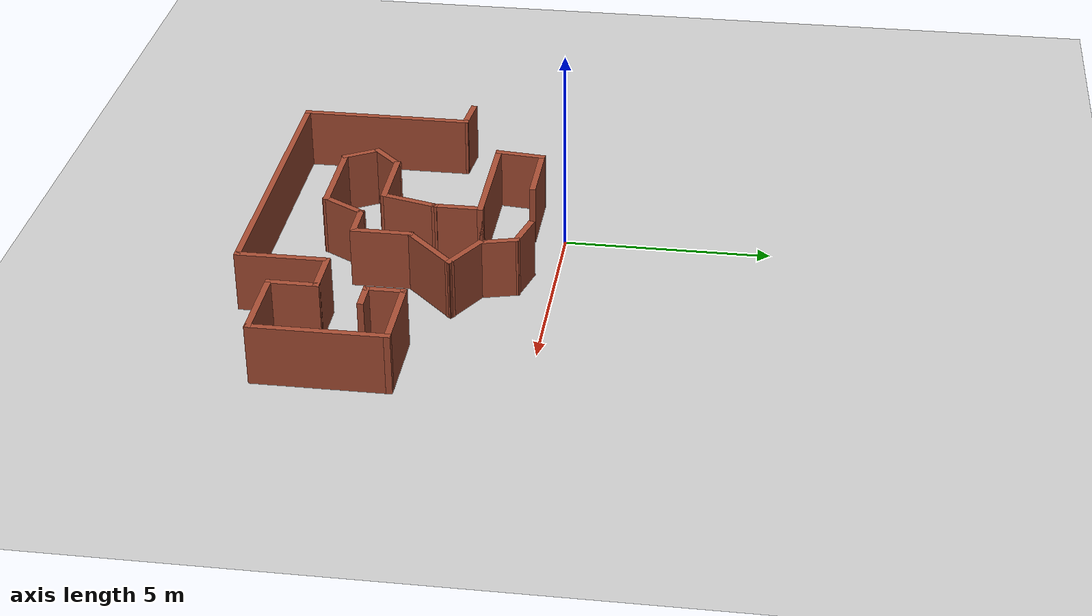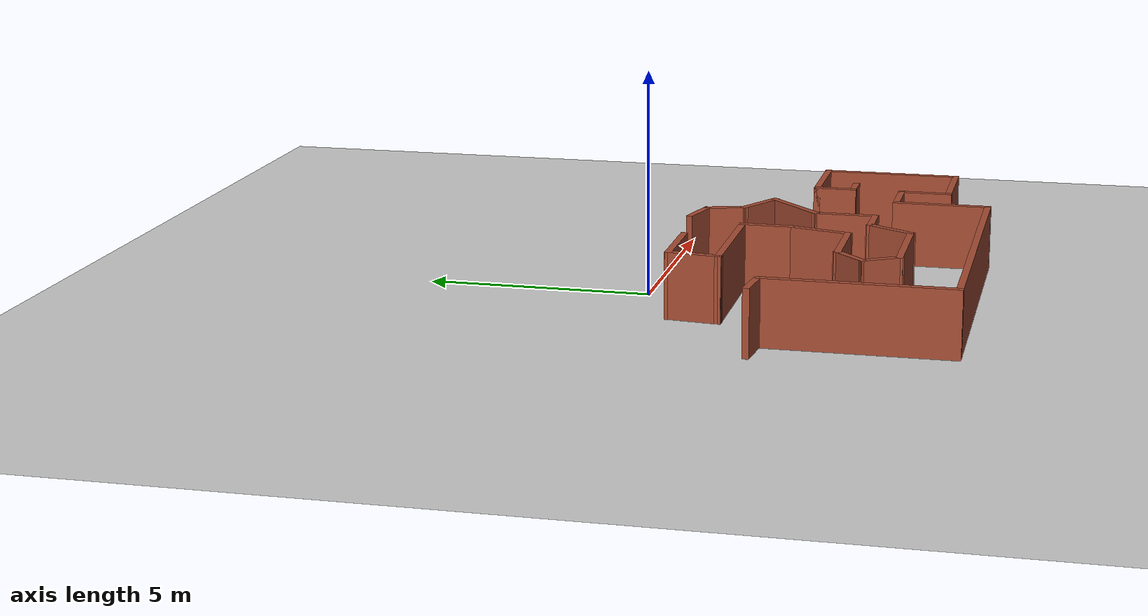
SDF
<sdf version="1.7">
 <world name="expanded_maze_world">
  <model name="ground_plane">
   <static>1</static>
   <link name="link">
    <collision name="collision">
     <geometry><plane><normal>0 0 1</normal><size>100 100</size></plane></geometry>
     <surface>
      <contact><collide_bitmask>65535</collide_bitmask></contact>
      <friction><ode><mu>100</mu><mu2>50</mu2></ode></friction>
     </surface>
    </collision>
    <visual name="visual">
     <cast_shadows>0</cast_shadows>
     <geometry><plane><normal>0 0 1</normal><size>100 100</size></plane></geometry>
     <material>
      <script><uri>file://media/materials/scripts/gazebo.material</uri><name>Gazebo/Grey</name></script>
     </material>
    </visual>
   </link>
  </model>
  <model name="ground_plane">
   <static>1</static>
   <link name="link">
    <collision name="collision">
     <geometry><plane><normal>0 0 1</normal><size>100 100</size></plane></geometry>
     <surface>
      <contact><collide_bitmask>65535</collide_bitmask></contact>
      <friction><ode><mu>100</mu><mu2>50</mu2></ode></friction>
     </surface>
    </collision>
    <visual name="visual">
     <cast_shadows>0</cast_shadows>
     <geometry><plane><normal>0 0 1</normal><size>100 100</size></plane></geometry>
     <material>
      <script><uri>file://media/materials/scripts/gazebo.material</uri><name>Gazebo/Grey</name></script>
     </material>
    </visual>
   </link>
  </model>
  <model name="Search">
   <link name="Wall_0">
    <pose>-4.64822 -5.4632 0 0 0 -1.5708</pose>
    <visual name="Wall_0_Visual">
     <pose>0 0 1.25 0 -0 0</pose>
     <geometry><box><size>4.25 0.15 2.5</size></box></geometry>
     <material>
      <script><uri>file://media/materials/scripts/gazebo.material</uri><name>Gazebo/Bricks</name></script>
      <ambient>1 1 1 1</ambient>
      <shader type="pixel"/>
     </material>
     <meta><layer>0</layer></meta>
    </visual>
    <collision name="Wall_0_Collision">
     <pose>0 0 1.25 0 -0 0</pose>
     <geometry><box><size>4.25 0.15 2.5</size></box></geometry>
     <surface>
      <friction>
       <ode><mu>1</mu><mu2>1</mu2><fdir1>0 0 0</fdir1><slip1>0</slip1><slip2>0</slip2></ode>
       <torsional>
        <coefficient>1</coefficient>
        <patch_radius>0</patch_radius>
        <surface_radius>0</surface_radius>
        <use_patch_radius>1</use_patch_radius>
        <ode><slip>0</slip></ode>
       </torsional>
      </friction>
      <bounce><restitution_coefficient>0</restitution_coefficient><threshold>1e+06</threshold></bounce>
      <contact>
       <collide_without_contact>0</collide_without_contact>
       <collide_without_contact_bitmask>1</collide_without_contact_bitmask>
       <collide_bitmask>1</collide_bitmask>
       <ode>
        <soft_cfm>0</soft_cfm>
        <soft_erp>0.2</soft_erp>
        <kp>1e+13</kp>
        <kd>1</kd>
        <max_vel>0.01</max_vel>
        <min_depth>0</min_depth>
       </ode>
       <bullet>
        <split_impulse>1</split_impulse>
        <split_impulse_penetration_threshold>-0.01</split_impulse_penetration_threshold>
        <soft_cfm>0</soft_cfm>
        <soft_erp>0.2</soft_erp>
        <kp>1e+13</kp>
        <kd>1</kd>
       </bullet>
      </contact>
     </surface>
    </collision>
   </link>
   <link name="Wall_11">
    <pose>2.4822 -6.4632 0 0 -0 1.5708</pose>
    <visual name="Wall_11_Visual">
     <pose>0 0 1.25 0 -0 0</pose>
     <geometry><box><size>2.25 0.15 2.5</size></box></geometry>
     <material>
      <script><uri>file://media/materials/scripts/gazebo.material</uri><name>Gazebo/Bricks</name></script>
      <ambient>1 1 1 1</ambient>
      <shader type="pixel"/>
     </material>
     <meta><layer>0</layer></meta>
    </visual>
    <collision name="Wall_11_Collision">
     <pose>0 0 1.25 0 -0 0</pose>
     <geometry><box><size>2.25 0.15 2.5</size></box></geometry>
     <surface>
      <friction>
       <ode><mu>1</mu><mu2>1</mu2><fdir1>0 0 0</fdir1><slip1>0</slip1><slip2>0</slip2></ode>
       <torsional>
        <coefficient>1</coefficient>
        <patch_radius>0</patch_radius>
        <surface_radius>0</surface_radius>
        <use_patch_radius>1</use_patch_radius>
        <ode><slip>0</slip></ode>
       </torsional>
      </friction>
      <bounce><restitution_coefficient>0</restitution_coefficient><threshold>1e+06</threshold></bounce>
      <contact>
       <collide_without_contact>0</collide_without_contact>
       <collide_without_contact_bitmask>1</collide_without_contact_bitmask>
       <collide_bitmask>1</collide_bitmask>
       <ode>
        <soft_cfm>0</soft_cfm>
        <soft_erp>0.2</soft_erp>
        <kp>1e+13</kp>
        <kd>1</kd>
        <max_vel>0.01</max_vel>
        <min_depth>0</min_depth>
       </ode>
       <bullet>
        <split_impulse>1</split_impulse>
        <split_impulse_penetration_threshold>-0.01</split_impulse_penetration_threshold>
        <soft_cfm>0</soft_cfm>
        <soft_erp>0.2</soft_erp>
        <kp>1e+13</kp>
        <kd>1</kd>
       </bullet>
      </contact>
     </surface>
    </collision>
   </link>
   <link name="Wall_12">
    <pose>3.0322 -5.4132 0 0 -0 0</pose>
    <visual name="Wall_12_Visual">
     <pose>0 0 1.25 0 -0 0</pose>
     <geometry><box><size>1.25 0.15 2.5</size></box></geometry>
     <material>
      <script><uri>file://media/materials/scripts/gazebo.material</uri><name>Gazebo/Bricks</name></script>
      <ambient>1 1 1 1</ambient>
      <shader type="pixel"/>
     </material>
     <meta><layer>0</layer></meta>
    </visual>
    <collision name="Wall_12_Collision">
     <pose>0 0 1.25 0 -0 0</pose>
     <geometry><box><size>1.25 0.15 2.5</size></box></geometry>
     <surface>
      <friction>
       <ode><mu>1</mu><mu2>1</mu2><fdir1>0 0 0</fdir1><slip1>0</slip1><slip2>0</slip2></ode>
       <torsional>
        <coefficient>1</coefficient>
        <patch_radius>0</patch_radius>
        <surface_radius>0</surface_radius>
        <use_patch_radius>1</use_patch_radius>
        <ode><slip>0</slip></ode>
       </torsional>
      </friction>
      <bounce><restitution_coefficient>0</restitution_coefficient><threshold>1e+06</threshold></bounce>
      <contact>
       <collide_without_contact>0</collide_without_contact>
       <collide_without_contact_bitmask>1</collide_without_contact_bitmask>
       <collide_bitmask>1</collide_bitmask>
       <ode>
        <soft_cfm>0</soft_cfm>
        <soft_erp>0.2</soft_erp>
        <kp>1e+13</kp>
        <kd>1</kd>
        <max_vel>0.01</max_vel>
        <min_depth>0</min_depth>
       </ode>
       <bullet>
        <split_impulse>1</split_impulse>
        <split_impulse_penetration_threshold>-0.01</split_impulse_penetration_threshold>
        <soft_cfm>0</soft_cfm>
        <soft_erp>0.2</soft_erp>
        <kp>1e+13</kp>
        <kd>1</kd>
       </bullet>
      </contact>
     </surface>
    </collision>
   </link>
   <link name="Wall_13">
    <pose>3.5822 -5.9632 0 0 0 -1.5708</pose>
    <visual name="Wall_13_Visual">
     <pose>0 0 1.25 0 -0 0</pose>
     <geometry><box><size>1.25 0.15 2.5</size></box></geometry>
     <material>
      <script><uri>file://media/materials/scripts/gazebo.material</uri><name>Gazebo/Bricks</name></script>
      <ambient>1 1 1 1</ambient>
      <shader type="pixel"/>
     </material>
     <meta><layer>0</layer></meta>
    </visual>
    <collision name="Wall_13_Collision">
     <pose>0 0 1.25 0 -0 0</pose>
     <geometry><box><size>1.25 0.15 2.5</size></box></geometry>
     <surface>
      <friction>
       <ode><mu>1</mu><mu2>1</mu2><fdir1>0 0 0</fdir1><slip1>0</slip1><slip2>0</slip2></ode>
       <torsional>
        <coefficient>1</coefficient>
        <patch_radius>0</patch_radius>
        <surface_radius>0</surface_radius>
        <use_patch_radius>1</use_patch_radius>
        <ode><slip>0</slip></ode>
       </torsional>
      </friction>
      <bounce><restitution_coefficient>0</restitution_coefficient><threshold>1e+06</threshold></bounce>
      <contact>
       <collide_without_contact>0</collide_without_contact>
       <collide_without_contact_bitmask>1</collide_without_contact_bitmask>
       <collide_bitmask>1</collide_bitmask>
       <ode>
        <soft_cfm>0</soft_cfm>
        <soft_erp>0.2</soft_erp>
        <kp>1e+13</kp>
        <kd>1</kd>
        <max_vel>0.01</max_vel>
        <min_depth>0</min_depth>
       </ode>
       <bullet>
        <split_impulse>1</split_impulse>
        <split_impulse_penetration_threshold>-0.01</split_impulse_penetration_threshold>
        <soft_cfm>0</soft_cfm>
        <soft_erp>0.2</soft_erp>
        <kp>1e+13</kp>
        <kd>1</kd>
       </bullet>
      </contact>
     </surface>
    </collision>
   </link>
   <link name="Wall_14">
    <pose>4.5072 -6.5132 0 0 -0 0</pose>
    <visual name="Wall_14_Visual">
     <pose>0 0 1.25 0 -0 0</pose>
     <geometry><box><size>2 0.15 2.5</size></box></geometry>
     <material>
      <script><uri>file://media/materials/scripts/gazebo.material</uri><name>Gazebo/Bricks</name></script>
      <ambient>1 1 1 1</ambient>
      <shader type="pixel"/>
     </material>
     <meta><layer>0</layer></meta>
    </visual>
    <collision name="Wall_14_Collision">
     <pose>0 0 1.25 0 -0 0</pose>
     <geometry><box><size>2 0.15 2.5</size></box></geometry>
     <surface>
      <friction>
       <ode><mu>1</mu><mu2>1</mu2><fdir1>0 0 0</fdir1><slip1>0</slip1><slip2>0</slip2></ode>
       <torsional>
        <coefficient>1</coefficient>
        <patch_radius>0</patch_radius>
        <surface_radius>0</surface_radius>
        <use_patch_radius>1</use_patch_radius>
        <ode><slip>0</slip></ode>
       </torsional>
      </friction>
      <bounce><restitution_coefficient>0</restitution_coefficient><threshold>1e+06</threshold></bounce>
      <contact>
       <collide_without_contact>0</collide_without_contact>
       <collide_without_contact_bitmask>1</collide_without_contact_bitmask>
       <collide_bitmask>1</collide_bitmask>
       <ode>
        <soft_cfm>0</soft_cfm>
        <soft_erp>0.2</soft_erp>
        <kp>1e+13</kp>
        <kd>1</kd>
        <max_vel>0.01</max_vel>
        <min_depth>0</min_depth>
       </ode>
       <bullet>
        <split_impulse>1</split_impulse>
        <split_impulse_penetration_threshold>-0.01</split_impulse_penetration_threshold>
        <soft_cfm>0</soft_cfm>
        <soft_erp>0.2</soft_erp>
        <kp>1e+13</kp>
        <kd>1</kd>
       </bullet>
      </contact>
     </surface>
    </collision>
   </link>
   <link name="Wall_15">
    <pose>5.4322 -4.9632 0 0 -0 1.5708</pose>
    <visual name="Wall_15_Visual">
     <pose>0 0 1.25 0 -0 0</pose>
     <geometry><box><size>3.25 0.15 2.5</size></box></geometry>
     <material>
      <script><uri>file://media/materials/scripts/gazebo.material</uri><name>Gazebo/Bricks</name></script>
      <ambient>1 1 1 1</ambient>
      <shader type="pixel"/>
     </material>
     <meta><layer>0</layer></meta>
    </visual>
    <collision name="Wall_15_Collision">
     <pose>0 0 1.25 0 -0 0</pose>
     <geometry><box><size>3.25 0.15 2.5</size></box></geometry>
     <surface>
      <friction>
       <ode><mu>1</mu><mu2>1</mu2><fdir1>0 0 0</fdir1><slip1>0</slip1><slip2>0</slip2></ode>
       <torsional>
        <coefficient>1</coefficient>
        <patch_radius>0</patch_radius>
        <surface_radius>0</surface_radius>
        <use_patch_radius>1</use_patch_radius>
        <ode><slip>0</slip></ode>
       </torsional>
      </friction>
      <bounce><restitution_coefficient>0</restitution_coefficient><threshold>1e+06</threshold></bounce>
      <contact>
       <collide_without_contact>0</collide_without_contact>
       <collide_without_contact_bitmask>1</collide_without_contact_bitmask>
       <collide_bitmask>1</collide_bitmask>
       <ode>
        <soft_cfm>0</soft_cfm>
        <soft_erp>0.2</soft_erp>
        <kp>1e+13</kp>
        <kd>1</kd>
        <max_vel>0.01</max_vel>
        <min_depth>0</min_depth>
       </ode>
       <bullet>
        <split_impulse>1</split_impulse>
        <split_impulse_penetration_threshold>-0.01</split_impulse_penetration_threshold>
        <soft_cfm>0</soft_cfm>
        <soft_erp>0.2</soft_erp>
        <kp>1e+13</kp>
        <kd>1</kd>
       </bullet>
      </contact>
     </surface>
    </collision>
   </link>
   <link name="Wall_16">
    <pose>4.5072 -3.4132 0 0 -0 3.14159</pose>
    <visual name="Wall_16_Visual">
     <pose>0 0 1.25 0 -0 0</pose>
     <geometry><box><size>2 0.15 2.5</size></box></geometry>
     <material>
      <script><uri>file://media/materials/scripts/gazebo.material</uri><name>Gazebo/Bricks</name></script>
      <ambient>1 1 1 1</ambient>
      <shader type="pixel"/>
     </material>
     <meta><layer>0</layer></meta>
    </visual>
    <collision name="Wall_16_Collision">
     <pose>0 0 1.25 0 -0 0</pose>
     <geometry><box><size>2 0.15 2.5</size></box></geometry>
     <surface>
      <friction>
       <ode><mu>1</mu><mu2>1</mu2><fdir1>0 0 0</fdir1><slip1>0</slip1><slip2>0</slip2></ode>
       <torsional>
        <coefficient>1</coefficient>
        <patch_radius>0</patch_radius>
        <surface_radius>0</surface_radius>
        <use_patch_radius>1</use_patch_radius>
        <ode><slip>0</slip></ode>
       </torsional>
      </friction>
      <bounce><restitution_coefficient>0</restitution_coefficient><threshold>1e+06</threshold></bounce>
      <contact>
       <collide_without_contact>0</collide_without_contact>
       <collide_without_contact_bitmask>1</collide_without_contact_bitmask>
       <collide_bitmask>1</collide_bitmask>
       <ode>
        <soft_cfm>0</soft_cfm>
        <soft_erp>0.2</soft_erp>
        <kp>1e+13</kp>
        <kd>1</kd>
        <max_vel>0.01</max_vel>
        <min_depth>0</min_depth>
       </ode>
       <bullet>
        <split_impulse>1</split_impulse>
        <split_impulse_penetration_threshold>-0.01</split_impulse_penetration_threshold>
        <soft_cfm>0</soft_cfm>
        <soft_erp>0.2</soft_erp>
        <kp>1e+13</kp>
        <kd>1</kd>
       </bullet>
      </contact>
     </surface>
    </collision>
   </link>
   <link name="Wall_17">
    <pose>3.5822 -3.8382 0 0 0 -1.5708</pose>
    <visual name="Wall_17_Visual">
     <pose>0 0 1.25 0 -0 0</pose>
     <geometry><box><size>1 0.15 2.5</size></box></geometry>
     <material>
      <script><uri>file://media/materials/scripts/gazebo.material</uri><name>Gazebo/Bricks</name></script>
      <ambient>1 1 1 1</ambient>
      <shader type="pixel"/>
     </material>
     <meta><layer>0</layer></meta>
    </visual>
    <collision name="Wall_17_Collision">
     <pose>0 0 1.25 0 -0 0</pose>
     <geometry><box><size>1 0.15 2.5</size></box></geometry>
     <surface>
      <friction>
       <ode><mu>1</mu><mu2>1</mu2><fdir1>0 0 0</fdir1><slip1>0</slip1><slip2>0</slip2></ode>
       <torsional>
        <coefficient>1</coefficient>
        <patch_radius>0</patch_radius>
        <surface_radius>0</surface_radius>
        <use_patch_radius>1</use_patch_radius>
        <ode><slip>0</slip></ode>
       </torsional>
      </friction>
      <bounce><restitution_coefficient>0</restitution_coefficient><threshold>1e+06</threshold></bounce>
      <contact>
       <collide_without_contact>0</collide_without_contact>
       <collide_without_contact_bitmask>1</collide_without_contact_bitmask>
       <collide_bitmask>1</collide_bitmask>
       <ode>
        <soft_cfm>0</soft_cfm>
        <soft_erp>0.2</soft_erp>
        <kp>1e+13</kp>
        <kd>1</kd>
        <max_vel>0.01</max_vel>
        <min_depth>0</min_depth>
       </ode>
       <bullet>
        <split_impulse>1</split_impulse>
        <split_impulse_penetration_threshold>-0.01</split_impulse_penetration_threshold>
        <soft_cfm>0</soft_cfm>
        <soft_erp>0.2</soft_erp>
        <kp>1e+13</kp>
        <kd>1</kd>
       </bullet>
      </contact>
     </surface>
    </collision>
   </link>
   <link name="Wall_18">
    <pose>3.8822 -4.2632 0 0 -0 0</pose>
    <visual name="Wall_18_Visual">
     <pose>0 0 1.25 0 -0 0</pose>
     <geometry><box><size>0.75 0.15 2.5</size></box></geometry>
     <material>
      <script><uri>file://media/materials/scripts/gazebo.material</uri><name>Gazebo/Bricks</name></script>
      <ambient>1 1 1 1</ambient>
      <shader type="pixel"/>
     </material>
     <meta><layer>0</layer></meta>
    </visual>
    <collision name="Wall_18_Collision">
     <pose>0 0 1.25 0 -0 0</pose>
     <geometry><box><size>0.75 0.15 2.5</size></box></geometry>
     <surface>
      <friction>
       <ode><mu>1</mu><mu2>1</mu2><fdir1>0 0 0</fdir1><slip1>0</slip1><slip2>0</slip2></ode>
       <torsional>
        <coefficient>1</coefficient>
        <patch_radius>0</patch_radius>
        <surface_radius>0</surface_radius>
        <use_patch_radius>1</use_patch_radius>
        <ode><slip>0</slip></ode>
       </torsional>
      </friction>
      <bounce><restitution_coefficient>0</restitution_coefficient><threshold>1e+06</threshold></bounce>
      <contact>
       <collide_without_contact>0</collide_without_contact>
       <collide_without_contact_bitmask>1</collide_without_contact_bitmask>
       <collide_bitmask>1</collide_bitmask>
       <ode>
        <soft_cfm>0</soft_cfm>
        <soft_erp>0.2</soft_erp>
        <kp>1e+13</kp>
        <kd>1</kd>
        <max_vel>0.01</max_vel>
        <min_depth>0</min_depth>
       </ode>
       <bullet>
        <split_impulse>1</split_impulse>
        <split_impulse_penetration_threshold>-0.01</split_impulse_penetration_threshold>
        <soft_cfm>0</soft_cfm>
        <soft_erp>0.2</soft_erp>
        <kp>1e+13</kp>
        <kd>1</kd>
       </bullet>
      </contact>
     </surface>
    </collision>
   </link>
   <link name="Wall_26">
    <pose>-5.05155 -3.37545 0 0 0 -0.093331</pose>
    <visual name="Wall_26_Visual">
     <pose>0 0 1.25 0 -0 0</pose>
     <geometry><box><size>0.960202 0.15 2.5</size></box></geometry>
     <material>
      <script><uri>file://media/materials/scripts/gazebo.material</uri><name>Gazebo/Bricks</name></script>
      <ambient>1 1 1 1</ambient>
      <shader type="pixel"/>
     </material>
     <meta><layer>0</layer></meta>
    </visual>
    <collision name="Wall_26_Collision">
     <pose>0 0 1.25 0 -0 0</pose>
     <geometry><box><size>0.960202 0.15 2.5</size></box></geometry>
     <surface>
      <friction>
       <ode><mu>1</mu><mu2>1</mu2><fdir1>0 0 0</fdir1><slip1>0</slip1><slip2>0</slip2></ode>
       <torsional>
        <coefficient>1</coefficient>
        <patch_radius>0</patch_radius>
        <surface_radius>0</surface_radius>
        <use_patch_radius>1</use_patch_radius>
        <ode><slip>0</slip></ode>
       </torsional>
      </friction>
      <bounce><restitution_coefficient>0</restitution_coefficient><threshold>1e+06</threshold></bounce>
      <contact>
       <collide_without_contact>0</collide_without_contact>
       <collide_without_contact_bitmask>1</collide_without_contact_bitmask>
       <collide_bitmask>1</collide_bitmask>
       <ode>
        <soft_cfm>0</soft_cfm>
        <soft_erp>0.2</soft_erp>
        <kp>1e+13</kp>
        <kd>1</kd>
        <max_vel>0.01</max_vel>
        <min_depth>0</min_depth>
       </ode>
       <bullet>
        <split_impulse>1</split_impulse>
        <split_impulse_penetration_threshold>-0.01</split_impulse_penetration_threshold>
        <soft_cfm>0</soft_cfm>
        <soft_erp>0.2</soft_erp>
        <kp>1e+13</kp>
        <kd>1</kd>
       </bullet>
      </contact>
     </surface>
    </collision>
   </link>
   <link name="Wall_37">
    <pose>-2.2358 -1.21673 0 0 -0 3.14159</pose>
    <visual name="Wall_37_Visual">
     <pose>0 0 1.25 0 -0 0</pose>
     <geometry><box><size>1.75 0.15 2.5</size></box></geometry>
     <material>
      <script><uri>file://media/materials/scripts/gazebo.material</uri><name>Gazebo/Bricks</name></script>
      <ambient>1 1 1 1</ambient>
      <shader type="pixel"/>
     </material>
     <meta><layer>0</layer></meta>
    </visual>
    <collision name="Wall_37_Collision">
     <pose>0 0 1.25 0 -0 0</pose>
     <geometry><box><size>1.75 0.15 2.5</size></box></geometry>
     <surface>
      <friction>
       <ode><mu>1</mu><mu2>1</mu2><fdir1>0 0 0</fdir1><slip1>0</slip1><slip2>0</slip2></ode>
       <torsional>
        <coefficient>1</coefficient>
        <patch_radius>0</patch_radius>
        <surface_radius>0</surface_radius>
        <use_patch_radius>1</use_patch_radius>
        <ode><slip>0</slip></ode>
       </torsional>
      </friction>
      <bounce><restitution_coefficient>0</restitution_coefficient><threshold>1e+06</threshold></bounce>
      <contact>
       <collide_without_contact>0</collide_without_contact>
       <collide_without_contact_bitmask>1</collide_without_contact_bitmask>
       <collide_bitmask>1</collide_bitmask>
       <ode>
        <soft_cfm>0</soft_cfm>
        <soft_erp>0.2</soft_erp>
        <kp>1e+13</kp>
        <kd>1</kd>
        <max_vel>0.01</max_vel>
        <min_depth>0</min_depth>
       </ode>
       <bullet>
        <split_impulse>1</split_impulse>
        <split_impulse_penetration_threshold>-0.01</split_impulse_penetration_threshold>
        <soft_cfm>0</soft_cfm>
        <soft_erp>0.2</soft_erp>
        <kp>1e+13</kp>
        <kd>1</kd>
       </bullet>
      </contact>
     </surface>
    </collision>
   </link>
   <link name="Wall_38">
    <pose>-3.09201 -1.76496 0 0 0 -1.67297</pose>
    <visual name="Wall_38_Visual">
     <pose>0 0 1.25 0 -0 0</pose>
     <geometry><box><size>1.25222 0.15 2.5</size></box></geometry>
     <material>
      <script><uri>file://media/materials/scripts/gazebo.material</uri><name>Gazebo/Bricks</name></script>
      <ambient>1 1 1 1</ambient>
      <shader type="pixel"/>
     </material>
     <meta><layer>0</layer></meta>
    </visual>
    <collision name="Wall_38_Collision">
     <pose>0 0 1.25 0 -0 0</pose>
     <geometry><box><size>1.25222 0.15 2.5</size></box></geometry>
     <surface>
      <friction>
       <ode><mu>1</mu><mu2>1</mu2><fdir1>0 0 0</fdir1><slip1>0</slip1><slip2>0</slip2></ode>
       <torsional>
        <coefficient>1</coefficient>
        <patch_radius>0</patch_radius>
        <surface_radius>0</surface_radius>
        <use_patch_radius>1</use_patch_radius>
        <ode><slip>0</slip></ode>
       </torsional>
      </friction>
      <bounce><restitution_coefficient>0</restitution_coefficient><threshold>1e+06</threshold></bounce>
      <contact>
       <collide_without_contact>0</collide_without_contact>
       <collide_without_contact_bitmask>1</collide_without_contact_bitmask>
       <collide_bitmask>1</collide_bitmask>
       <ode>
        <soft_cfm>0</soft_cfm>
        <soft_erp>0.2</soft_erp>
        <kp>1e+13</kp>
        <kd>1</kd>
        <max_vel>0.01</max_vel>
        <min_depth>0</min_depth>
       </ode>
       <bullet>
        <split_impulse>1</split_impulse>
        <split_impulse_penetration_threshold>-0.01</split_impulse_penetration_threshold>
        <soft_cfm>0</soft_cfm>
        <soft_erp>0.2</soft_erp>
        <kp>1e+13</kp>
        <kd>1</kd>
       </bullet>
      </contact>
     </surface>
    </collision>
   </link>
   <link name="Wall_4">
    <pose>-1.0678 -7.5132 0 0 -0 0</pose>
    <visual name="Wall_4_Visual">
     <pose>0 0 1.25 0 -0 0</pose>
     <geometry><box><size>7.25 0.15 2.5</size></box></geometry>
     <material>
      <script><uri>file://media/materials/scripts/gazebo.material</uri><name>Gazebo/Bricks</name></script>
      <ambient>1 1 1 1</ambient>
      <shader type="pixel"/>
     </material>
     <meta><layer>0</layer></meta>
    </visual>
    <collision name="Wall_4_Collision">
     <pose>0 0 1.25 0 -0 0</pose>
     <geometry><box><size>7.25 0.15 2.5</size></box></geometry>
     <surface>
      <friction>
       <ode><mu>1</mu><mu2>1</mu2><fdir1>0 0 0</fdir1><slip1>0</slip1><slip2>0</slip2></ode>
       <torsional>
        <coefficient>1</coefficient>
        <patch_radius>0</patch_radius>
        <surface_radius>0</surface_radius>
        <use_patch_radius>1</use_patch_radius>
        <ode><slip>0</slip></ode>
       </torsional>
      </friction>
      <bounce><restitution_coefficient>0</restitution_coefficient><threshold>1e+06</threshold></bounce>
      <contact>
       <collide_without_contact>0</collide_without_contact>
       <collide_without_contact_bitmask>1</collide_without_contact_bitmask>
       <collide_bitmask>1</collide_bitmask>
       <ode>
        <soft_cfm>0</soft_cfm>
        <soft_erp>0.2</soft_erp>
        <kp>1e+13</kp>
        <kd>1</kd>
        <max_vel>0.01</max_vel>
        <min_depth>0</min_depth>
       </ode>
       <bullet>
        <split_impulse>1</split_impulse>
        <split_impulse_penetration_threshold>-0.01</split_impulse_penetration_threshold>
        <soft_cfm>0</soft_cfm>
        <soft_erp>0.2</soft_erp>
        <kp>1e+13</kp>
        <kd>1</kd>
       </bullet>
      </contact>
     </surface>
    </collision>
   </link>
   <link name="Wall_56">
    <pose>-0.47292 -4.0652 0 0 0 -1.8326</pose>
    <visual name="Wall_56_Visual">
     <pose>0 0 1.25 0 -0 0</pose>
     <geometry><box><size>1.5 0.15 2.5</size></box></geometry>
     <material>
      <script><uri>file://media/materials/scripts/gazebo.material</uri><name>Gazebo/Bricks</name></script>
      <ambient>1 1 1 1</ambient>
      <shader type="pixel"/>
     </material>
     <meta><layer>0</layer></meta>
    </visual>
    <collision name="Wall_56_Collision">
     <pose>0 0 1.25 0 -0 0</pose>
     <geometry><box><size>1.5 0.15 2.5</size></box></geometry>
     <surface>
      <friction>
       <ode><mu>1</mu><mu2>1</mu2><fdir1>0 0 0</fdir1><slip1>0</slip1><slip2>0</slip2></ode>
       <torsional>
        <coefficient>1</coefficient>
        <patch_radius>0</patch_radius>
        <surface_radius>0</surface_radius>
        <use_patch_radius>1</use_patch_radius>
        <ode><slip>0</slip></ode>
       </torsional>
      </friction>
      <bounce><restitution_coefficient>0</restitution_coefficient><threshold>1e+06</threshold></bounce>
      <contact>
       <collide_without_contact>0</collide_without_contact>
       <collide_without_contact_bitmask>1</collide_without_contact_bitmask>
       <collide_bitmask>1</collide_bitmask>
       <ode>
        <soft_cfm>0</soft_cfm>
        <soft_erp>0.2</soft_erp>
        <kp>1e+13</kp>
        <kd>1</kd>
        <max_vel>0.01</max_vel>
        <min_depth>0</min_depth>
       </ode>
       <bullet>
        <split_impulse>1</split_impulse>
        <split_impulse_penetration_threshold>-0.01</split_impulse_penetration_threshold>
        <soft_cfm>0</soft_cfm>
        <soft_erp>0.2</soft_erp>
        <kp>1e+13</kp>
        <kd>1</kd>
       </bullet>
      </contact>
     </surface>
    </collision>
   </link>
   <link name="Wall_57">
    <pose>-1.44762 -4.7172 0 0 -0 3.14159</pose>
    <visual name="Wall_57_Visual">
     <pose>0 0 1.25 0 -0 0</pose>
     <geometry><box><size>1.75 0.15 2.5</size></box></geometry>
     <material>
      <script><uri>file://media/materials/scripts/gazebo.material</uri><name>Gazebo/Bricks</name></script>
      <ambient>1 1 1 1</ambient>
      <shader type="pixel"/>
     </material>
     <meta><layer>0</layer></meta>
    </visual>
    <collision name="Wall_57_Collision">
     <pose>0 0 1.25 0 -0 0</pose>
     <geometry><box><size>1.75 0.15 2.5</size></box></geometry>
     <surface>
      <friction>
       <ode><mu>1</mu><mu2>1</mu2><fdir1>0 0 0</fdir1><slip1>0</slip1><slip2>0</slip2></ode>
       <torsional>
        <coefficient>1</coefficient>
        <patch_radius>0</patch_radius>
        <surface_radius>0</surface_radius>
        <use_patch_radius>1</use_patch_radius>
        <ode><slip>0</slip></ode>
       </torsional>
      </friction>
      <bounce><restitution_coefficient>0</restitution_coefficient><threshold>1e+06</threshold></bounce>
      <contact>
       <collide_without_contact>0</collide_without_contact>
       <collide_without_contact_bitmask>1</collide_without_contact_bitmask>
       <collide_bitmask>1</collide_bitmask>
       <ode>
        <soft_cfm>0</soft_cfm>
        <soft_erp>0.2</soft_erp>
        <kp>1e+13</kp>
        <kd>1</kd>
        <max_vel>0.01</max_vel>
        <min_depth>0</min_depth>
       </ode>
       <bullet>
        <split_impulse>1</split_impulse>
        <split_impulse_penetration_threshold>-0.01</split_impulse_penetration_threshold>
        <soft_cfm>0</soft_cfm>
        <soft_erp>0.2</soft_erp>
        <kp>1e+13</kp>
        <kd>1</kd>
       </bullet>
      </contact>
     </surface>
    </collision>
   </link>
   <link name="Wall_58">
    <pose>-2.54814 -5.01772 0 0 0 -2.35619</pose>
    <visual name="Wall_58_Visual">
     <pose>0 0 1.25 0 -0 0</pose>
     <geometry><box><size>1 0.15 2.5</size></box></geometry>
     <material>
      <script><uri>file://media/materials/scripts/gazebo.material</uri><name>Gazebo/Bricks</name></script>
      <ambient>1 1 1 1</ambient>
      <shader type="pixel"/>
     </material>
     <meta><layer>0</layer></meta>
    </visual>
    <collision name="Wall_58_Collision">
     <pose>0 0 1.25 0 -0 0</pose>
     <geometry><box><size>1 0.15 2.5</size></box></geometry>
     <surface>
      <friction>
       <ode><mu>1</mu><mu2>1</mu2><fdir1>0 0 0</fdir1><slip1>0</slip1><slip2>0</slip2></ode>
       <torsional>
        <coefficient>1</coefficient>
        <patch_radius>0</patch_radius>
        <surface_radius>0</surface_radius>
        <use_patch_radius>1</use_patch_radius>
        <ode><slip>0</slip></ode>
       </torsional>
      </friction>
      <bounce><restitution_coefficient>0</restitution_coefficient><threshold>1e+06</threshold></bounce>
      <contact>
       <collide_without_contact>0</collide_without_contact>
       <collide_without_contact_bitmask>1</collide_without_contact_bitmask>
       <collide_bitmask>1</collide_bitmask>
       <ode>
        <soft_cfm>0</soft_cfm>
        <soft_erp>0.2</soft_erp>
        <kp>1e+13</kp>
        <kd>1</kd>
        <max_vel>0.01</max_vel>
        <min_depth>0</min_depth>
       </ode>
       <bullet>
        <split_impulse>1</split_impulse>
        <split_impulse_penetration_threshold>-0.01</split_impulse_penetration_threshold>
        <soft_cfm>0</soft_cfm>
        <soft_erp>0.2</soft_erp>
        <kp>1e+13</kp>
        <kd>1</kd>
       </bullet>
      </contact>
     </surface>
    </collision>
   </link>
   <link name="Wall_59">
    <pose>-2.63616 -5.6863 0 0 0 -1.0472</pose>
    <visual name="Wall_59_Visual">
     <pose>0 0 1.25 0 -0 0</pose>
     <geometry><box><size>1 0.15 2.5</size></box></geometry>
     <material>
      <script><uri>file://media/materials/scripts/gazebo.material</uri><name>Gazebo/Bricks</name></script>
      <ambient>1 1 1 1</ambient>
      <shader type="pixel"/>
     </material>
     <meta><layer>0</layer></meta>
    </visual>
    <collision name="Wall_59_Collision">
     <pose>0 0 1.25 0 -0 0</pose>
     <geometry><box><size>1 0.15 2.5</size></box></geometry>
     <surface>
      <friction>
       <ode><mu>1</mu><mu2>1</mu2><fdir1>0 0 0</fdir1><slip1>0</slip1><slip2>0</slip2></ode>
       <torsional>
        <coefficient>1</coefficient>
        <patch_radius>0</patch_radius>
        <surface_radius>0</surface_radius>
        <use_patch_radius>1</use_patch_radius>
        <ode><slip>0</slip></ode>
       </torsional>
      </friction>
      <bounce><restitution_coefficient>0</restitution_coefficient><threshold>1e+06</threshold></bounce>
      <contact>
       <collide_without_contact>0</collide_without_contact>
       <collide_without_contact_bitmask>1</collide_without_contact_bitmask>
       <collide_bitmask>1</collide_bitmask>
       <ode>
        <soft_cfm>0</soft_cfm>
        <soft_erp>0.2</soft_erp>
        <kp>1e+13</kp>
        <kd>1</kd>
        <max_vel>0.01</max_vel>
        <min_depth>0</min_depth>
       </ode>
       <bullet>
        <split_impulse>1</split_impulse>
        <split_impulse_penetration_threshold>-0.01</split_impulse_penetration_threshold>
        <soft_cfm>0</soft_cfm>
        <soft_erp>0.2</soft_erp>
        <kp>1e+13</kp>
        <kd>1</kd>
       </bullet>
      </contact>
     </surface>
    </collision>
   </link>
   <link name="Wall_60">
    <pose>-1.37366 -6.05436 0 0 -0 0</pose>
    <visual name="Wall_60_Visual">
     <pose>0 0 1.25 0 -0 0</pose>
     <geometry><box><size>2.25 0.15 2.5</size></box></geometry>
     <material>
      <script><uri>file://media/materials/scripts/gazebo.material</uri><name>Gazebo/Bricks</name></script>
      <ambient>1 1 1 1</ambient>
      <shader type="pixel"/>
     </material>
     <meta><layer>0</layer></meta>
    </visual>
    <collision name="Wall_60_Collision">
     <pose>0 0 1.25 0 -0 0</pose>
     <geometry><box><size>2.25 0.15 2.5</size></box></geometry>
     <surface>
      <friction>
       <ode><mu>1</mu><mu2>1</mu2><fdir1>0 0 0</fdir1><slip1>0</slip1><slip2>0</slip2></ode>
       <torsional>
        <coefficient>1</coefficient>
        <patch_radius>0</patch_radius>
        <surface_radius>0</surface_radius>
        <use_patch_radius>1</use_patch_radius>
        <ode><slip>0</slip></ode>
       </torsional>
      </friction>
      <bounce><restitution_coefficient>0</restitution_coefficient><threshold>1e+06</threshold></bounce>
      <contact>
       <collide_without_contact>0</collide_without_contact>
       <collide_without_contact_bitmask>1</collide_without_contact_bitmask>
       <collide_bitmask>1</collide_bitmask>
       <ode>
        <soft_cfm>0</soft_cfm>
        <soft_erp>0.2</soft_erp>
        <kp>1e+13</kp>
        <kd>1</kd>
        <max_vel>0.01</max_vel>
        <min_depth>0</min_depth>
       </ode>
       <bullet>
        <split_impulse>1</split_impulse>
        <split_impulse_penetration_threshold>-0.01</split_impulse_penetration_threshold>
        <soft_cfm>0</soft_cfm>
        <soft_erp>0.2</soft_erp>
        <kp>1e+13</kp>
        <kd>1</kd>
       </bullet>
      </contact>
     </surface>
    </collision>
   </link>
   <link name="Wall_61">
    <pose>-0.048663 -5.57805 0 0 -0 1.0472</pose>
    <visual name="Wall_61_Visual">
     <pose>0 0 1.25 0 -0 0</pose>
     <geometry><box><size>1.25 0.15 2.5</size></box></geometry>
     <material>
      <script><uri>file://media/materials/scripts/gazebo.material</uri><name>Gazebo/Bricks</name></script>
      <ambient>1 1 1 1</ambient>
      <shader type="pixel"/>
     </material>
     <meta><layer>0</layer></meta>
    </visual>
    <collision name="Wall_61_Collision">
     <pose>0 0 1.25 0 -0 0</pose>
     <geometry><box><size>1.25 0.15 2.5</size></box></geometry>
     <surface>
      <friction>
       <ode><mu>1</mu><mu2>1</mu2><fdir1>0 0 0</fdir1><slip1>0</slip1><slip2>0</slip2></ode>
       <torsional>
        <coefficient>1</coefficient>
        <patch_radius>0</patch_radius>
        <surface_radius>0</surface_radius>
        <use_patch_radius>1</use_patch_radius>
        <ode><slip>0</slip></ode>
       </torsional>
      </friction>
      <bounce><restitution_coefficient>0</restitution_coefficient><threshold>1e+06</threshold></bounce>
      <contact>
       <collide_without_contact>0</collide_without_contact>
       <collide_without_contact_bitmask>1</collide_without_contact_bitmask>
       <collide_bitmask>1</collide_bitmask>
       <ode>
        <soft_cfm>0</soft_cfm>
        <soft_erp>0.2</soft_erp>
        <kp>1e+13</kp>
        <kd>1</kd>
        <max_vel>0.01</max_vel>
        <min_depth>0</min_depth>
       </ode>
       <bullet>
        <split_impulse>1</split_impulse>
        <split_impulse_penetration_threshold>-0.01</split_impulse_penetration_threshold>
        <soft_cfm>0</soft_cfm>
        <soft_erp>0.2</soft_erp>
        <kp>1e+13</kp>
        <kd>1</kd>
       </bullet>
      </contact>
     </surface>
    </collision>
   </link>
   <link name="Wall_62">
    <pose>0.651337 -5.10174 0 0 -0 0</pose>
    <visual name="Wall_62_Visual">
     <pose>0 0 1.25 0 -0 0</pose>
     <geometry><box><size>1 0.15 2.5</size></box></geometry>
     <material>
      <script><uri>file://media/materials/scripts/gazebo.material</uri><name>Gazebo/Bricks</name></script>
      <ambient>1 1 1 1</ambient>
      <shader type="pixel"/>
     </material>
     <meta><layer>0</layer></meta>
    </visual>
    <collision name="Wall_62_Collision">
     <pose>0 0 1.25 0 -0 0</pose>
     <geometry><box><size>1 0.15 2.5</size></box></geometry>
     <surface>
      <friction>
       <ode><mu>1</mu><mu2>1</mu2><fdir1>0 0 0</fdir1><slip1>0</slip1><slip2>0</slip2></ode>
       <torsional>
        <coefficient>1</coefficient>
        <patch_radius>0</patch_radius>
        <surface_radius>0</surface_radius>
        <use_patch_radius>1</use_patch_radius>
        <ode><slip>0</slip></ode>
       </torsional>
      </friction>
      <bounce><restitution_coefficient>0</restitution_coefficient><threshold>1e+06</threshold></bounce>
      <contact>
       <collide_without_contact>0</collide_without_contact>
       <collide_without_contact_bitmask>1</collide_without_contact_bitmask>
       <collide_bitmask>1</collide_bitmask>
       <ode>
        <soft_cfm>0</soft_cfm>
        <soft_erp>0.2</soft_erp>
        <kp>1e+13</kp>
        <kd>1</kd>
        <max_vel>0.01</max_vel>
        <min_depth>0</min_depth>
       </ode>
       <bullet>
        <split_impulse>1</split_impulse>
        <split_impulse_penetration_threshold>-0.01</split_impulse_penetration_threshold>
        <soft_cfm>0</soft_cfm>
        <soft_erp>0.2</soft_erp>
        <kp>1e+13</kp>
        <kd>1</kd>
       </bullet>
      </contact>
     </surface>
    </collision>
   </link>
   <link name="Wall_63">
    <pose>1.07634 -4.42674 0 0 -0 1.5708</pose>
    <visual name="Wall_63_Visual">
     <pose>0 0 1.25 0 -0 0</pose>
     <geometry><box><size>1.5 0.15 2.5</size></box></geometry>
     <material>
      <script><uri>file://media/materials/scripts/gazebo.material</uri><name>Gazebo/Bricks</name></script>
      <ambient>1 1 1 1</ambient>
      <shader type="pixel"/>
     </material>
     <meta><layer>0</layer></meta>
    </visual>
    <collision name="Wall_63_Collision">
     <pose>0 0 1.25 0 -0 0</pose>
     <geometry><box><size>1.5 0.15 2.5</size></box></geometry>
     <surface>
      <friction>
       <ode><mu>1</mu><mu2>1</mu2><fdir1>0 0 0</fdir1><slip1>0</slip1><slip2>0</slip2></ode>
       <torsional>
        <coefficient>1</coefficient>
        <patch_radius>0</patch_radius>
        <surface_radius>0</surface_radius>
        <use_patch_radius>1</use_patch_radius>
        <ode><slip>0</slip></ode>
       </torsional>
      </friction>
      <bounce><restitution_coefficient>0</restitution_coefficient><threshold>1e+06</threshold></bounce>
      <contact>
       <collide_without_contact>0</collide_without_contact>
       <collide_without_contact_bitmask>1</collide_without_contact_bitmask>
       <collide_bitmask>1</collide_bitmask>
       <ode>
        <soft_cfm>0</soft_cfm>
        <soft_erp>0.2</soft_erp>
        <kp>1e+13</kp>
        <kd>1</kd>
        <max_vel>0.01</max_vel>
        <min_depth>0</min_depth>
       </ode>
       <bullet>
        <split_impulse>1</split_impulse>
        <split_impulse_penetration_threshold>-0.01</split_impulse_penetration_threshold>
        <soft_cfm>0</soft_cfm>
        <soft_erp>0.2</soft_erp>
        <kp>1e+13</kp>
        <kd>1</kd>
       </bullet>
      </contact>
     </surface>
    </collision>
   </link>
   <link name="Wall_64">
    <pose>1.64202 -3.18605 0 0 -0 0.785398</pose>
    <visual name="Wall_64_Visual">
     <pose>0 0 1.25 0 -0 0</pose>
     <geometry><box><size>1.75 0.15 2.5</size></box></geometry>
     <material>
      <script><uri>file://media/materials/scripts/gazebo.material</uri><name>Gazebo/Bricks</name></script>
      <ambient>1 1 1 1</ambient>
      <shader type="pixel"/>
     </material>
     <meta><layer>0</layer></meta>
    </visual>
    <collision name="Wall_64_Collision">
     <pose>0 0 1.25 0 -0 0</pose>
     <geometry><box><size>1.75 0.15 2.5</size></box></geometry>
     <surface>
      <friction>
       <ode><mu>1</mu><mu2>1</mu2><fdir1>0 0 0</fdir1><slip1>0</slip1><slip2>0</slip2></ode>
       <torsional>
        <coefficient>1</coefficient>
        <patch_radius>0</patch_radius>
        <surface_radius>0</surface_radius>
        <use_patch_radius>1</use_patch_radius>
        <ode><slip>0</slip></ode>
       </torsional>
      </friction>
      <bounce><restitution_coefficient>0</restitution_coefficient><threshold>1e+06</threshold></bounce>
      <contact>
       <collide_without_contact>0</collide_without_contact>
       <collide_without_contact_bitmask>1</collide_without_contact_bitmask>
       <collide_bitmask>1</collide_bitmask>
       <ode>
        <soft_cfm>0</soft_cfm>
        <soft_erp>0.2</soft_erp>
        <kp>1e+13</kp>
        <kd>1</kd>
        <max_vel>0.01</max_vel>
        <min_depth>0</min_depth>
       </ode>
       <bullet>
        <split_impulse>1</split_impulse>
        <split_impulse_penetration_threshold>-0.01</split_impulse_penetration_threshold>
        <soft_cfm>0</soft_cfm>
        <soft_erp>0.2</soft_erp>
        <kp>1e+13</kp>
        <kd>1</kd>
       </bullet>
      </contact>
     </surface>
    </collision>
   </link>
   <link name="Wall_65">
    <pose>1.73139 -2.34537 0 0 -0 2.61799</pose>
    <visual name="Wall_65_Visual">
     <pose>0 0 1.25 0 -0 0</pose>
     <geometry><box><size>1.25 0.15 2.5</size></box></geometry>
     <material>
      <script><uri>file://media/materials/scripts/gazebo.material</uri><name>Gazebo/Bricks</name></script>
      <ambient>1 1 1 1</ambient>
      <shader type="pixel"/>
     </material>
     <meta><layer>0</layer></meta>
    </visual>
    <collision name="Wall_65_Collision">
     <pose>0 0 1.25 0 -0 0</pose>
     <geometry><box><size>1.25 0.15 2.5</size></box></geometry>
     <surface>
      <friction>
       <ode><mu>1</mu><mu2>1</mu2><fdir1>0 0 0</fdir1><slip1>0</slip1><slip2>0</slip2></ode>
       <torsional>
        <coefficient>1</coefficient>
        <patch_radius>0</patch_radius>
        <surface_radius>0</surface_radius>
        <use_patch_radius>1</use_patch_radius>
        <ode><slip>0</slip></ode>
       </torsional>
      </friction>
      <bounce><restitution_coefficient>0</restitution_coefficient><threshold>1e+06</threshold></bounce>
      <contact>
       <collide_without_contact>0</collide_without_contact>
       <collide_without_contact_bitmask>1</collide_without_contact_bitmask>
       <collide_bitmask>1</collide_bitmask>
       <ode>
        <soft_cfm>0</soft_cfm>
        <soft_erp>0.2</soft_erp>
        <kp>1e+13</kp>
        <kd>1</kd>
        <max_vel>0.01</max_vel>
        <min_depth>0</min_depth>
       </ode>
       <bullet>
        <split_impulse>1</split_impulse>
        <split_impulse_penetration_threshold>-0.01</split_impulse_penetration_threshold>
        <soft_cfm>0</soft_cfm>
        <soft_erp>0.2</soft_erp>
        <kp>1e+13</kp>
        <kd>1</kd>
       </bullet>
      </contact>
     </surface>
    </collision>
   </link>
   <link name="Wall_66">
    <pose>1.14508 -1.65985 0 0 -0 1.8326</pose>
    <visual name="Wall_66_Visual">
     <pose>0 0 1.25 0 -0 0</pose>
     <geometry><box><size>1 0.15 2.5</size></box></geometry>
     <material>
      <script><uri>file://media/materials/scripts/gazebo.material</uri><name>Gazebo/Bricks</name></script>
      <ambient>1 1 1 1</ambient>
      <shader type="pixel"/>
     </material>
     <meta><layer>0</layer></meta>
    </visual>
    <collision name="Wall_66_Collision">
     <pose>0 0 1.25 0 -0 0</pose>
     <geometry><box><size>1 0.15 2.5</size></box></geometry>
     <surface>
      <friction>
       <ode><mu>1</mu><mu2>1</mu2><fdir1>0 0 0</fdir1><slip1>0</slip1><slip2>0</slip2></ode>
       <torsional>
        <coefficient>1</coefficient>
        <patch_radius>0</patch_radius>
        <surface_radius>0</surface_radius>
        <use_patch_radius>1</use_patch_radius>
        <ode><slip>0</slip></ode>
       </torsional>
      </friction>
      <bounce><restitution_coefficient>0</restitution_coefficient><threshold>1e+06</threshold></bounce>
      <contact>
       <collide_without_contact>0</collide_without_contact>
       <collide_without_contact_bitmask>1</collide_without_contact_bitmask>
       <collide_bitmask>1</collide_bitmask>
       <ode>
        <soft_cfm>0</soft_cfm>
        <soft_erp>0.2</soft_erp>
        <kp>1e+13</kp>
        <kd>1</kd>
        <max_vel>0.01</max_vel>
        <min_depth>0</min_depth>
       </ode>
       <bullet>
        <split_impulse>1</split_impulse>
        <split_impulse_penetration_threshold>-0.01</split_impulse_penetration_threshold>
        <soft_cfm>0</soft_cfm>
        <soft_erp>0.2</soft_erp>
        <kp>1e+13</kp>
        <kd>1</kd>
       </bullet>
      </contact>
     </surface>
    </collision>
   </link>
   <link name="Wall_67">
    <pose>0.624565 -1.13933 0 0 -0 2.87979</pose>
    <visual name="Wall_67_Visual">
     <pose>0 0 1.25 0 -0 0</pose>
     <geometry><box><size>1 0.15 2.5</size></box></geometry>
     <material>
      <script><uri>file://media/materials/scripts/gazebo.material</uri><name>Gazebo/Bricks</name></script>
      <ambient>1 1 1 1</ambient>
      <shader type="pixel"/>
     </material>
     <meta><layer>0</layer></meta>
    </visual>
    <collision name="Wall_67_Collision">
     <pose>0 0 1.25 0 -0 0</pose>
     <geometry><box><size>1 0.15 2.5</size></box></geometry>
     <surface>
      <friction>
       <ode><mu>1</mu><mu2>1</mu2><fdir1>0 0 0</fdir1><slip1>0</slip1><slip2>0</slip2></ode>
       <torsional>
        <coefficient>1</coefficient>
        <patch_radius>0</patch_radius>
        <surface_radius>0</surface_radius>
        <use_patch_radius>1</use_patch_radius>
        <ode><slip>0</slip></ode>
       </torsional>
      </friction>
      <bounce><restitution_coefficient>0</restitution_coefficient><threshold>1e+06</threshold></bounce>
      <contact>
       <collide_without_contact>0</collide_without_contact>
       <collide_without_contact_bitmask>1</collide_without_contact_bitmask>
       <collide_bitmask>1</collide_bitmask>
       <ode>
        <soft_cfm>0</soft_cfm>
        <soft_erp>0.2</soft_erp>
        <kp>1e+13</kp>
        <kd>1</kd>
        <max_vel>0.01</max_vel>
        <min_depth>0</min_depth>
       </ode>
       <bullet>
        <split_impulse>1</split_impulse>
        <split_impulse_penetration_threshold>-0.01</split_impulse_penetration_threshold>
        <soft_cfm>0</soft_cfm>
        <soft_erp>0.2</soft_erp>
        <kp>1e+13</kp>
        <kd>1</kd>
       </bullet>
      </contact>
     </surface>
    </collision>
   </link>
   <link name="Wall_8">
    <pose>-0.298217 -2.8632 0 0 -0 1.5708</pose>
    <visual name="Wall_8_Visual">
     <pose>0 0 1.25 0 -0 0</pose>
     <geometry><box><size>1.25 0.15 2.5</size></box></geometry>
     <material>
      <script><uri>file://media/materials/scripts/gazebo.material</uri><name>Gazebo/Bricks</name></script>
      <ambient>1 1 1 1</ambient>
      <shader type="pixel"/>
     </material>
     <meta><layer>0</layer></meta>
    </visual>
    <collision name="Wall_8_Collision">
     <pose>0 0 1.25 0 -0 0</pose>
     <geometry><box><size>1.25 0.15 2.5</size></box></geometry>
     <surface>
      <friction>
       <ode><mu>1</mu><mu2>1</mu2><fdir1>0 0 0</fdir1><slip1>0</slip1><slip2>0</slip2></ode>
       <torsional>
        <coefficient>1</coefficient>
        <patch_radius>0</patch_radius>
        <surface_radius>0</surface_radius>
        <use_patch_radius>1</use_patch_radius>
        <ode><slip>0</slip></ode>
       </torsional>
      </friction>
      <bounce><restitution_coefficient>0</restitution_coefficient><threshold>1e+06</threshold></bounce>
      <contact>
       <collide_without_contact>0</collide_without_contact>
       <collide_without_contact_bitmask>1</collide_without_contact_bitmask>
       <collide_bitmask>1</collide_bitmask>
       <ode>
        <soft_cfm>0</soft_cfm>
        <soft_erp>0.2</soft_erp>
        <kp>1e+13</kp>
        <kd>1</kd>
        <max_vel>0.01</max_vel>
        <min_depth>0</min_depth>
       </ode>
       <bullet>
        <split_impulse>1</split_impulse>
        <split_impulse_penetration_threshold>-0.01</split_impulse_penetration_threshold>
        <soft_cfm>0</soft_cfm>
        <soft_erp>0.2</soft_erp>
        <kp>1e+13</kp>
        <kd>1</kd>
       </bullet>
      </contact>
     </surface>
    </collision>
   </link>
   <link name="Wall_9">
    <pose>-1.72322 -2.3132 0 0 -0 3.14159</pose>
    <visual name="Wall_9_Visual">
     <pose>0 0 1.25 0 -0 0</pose>
     <geometry><box><size>3 0.15 2.5</size></box></geometry>
     <material>
      <script><uri>file://media/materials/scripts/gazebo.material</uri><name>Gazebo/Bricks</name></script>
      <ambient>1 1 1 1</ambient>
      <shader type="pixel"/>
     </material>
     <meta><layer>0</layer></meta>
    </visual>
    <collision name="Wall_9_Collision">
     <pose>0 0 1.25 0 -0 0</pose>
     <geometry><box><size>3 0.15 2.5</size></box></geometry>
     <surface>
      <friction>
       <ode><mu>1</mu><mu2>1</mu2><fdir1>0 0 0</fdir1><slip1>0</slip1><slip2>0</slip2></ode>
       <torsional>
        <coefficient>1</coefficient>
        <patch_radius>0</patch_radius>
        <surface_radius>0</surface_radius>
        <use_patch_radius>1</use_patch_radius>
        <ode><slip>0</slip></ode>
       </torsional>
      </friction>
      <bounce><restitution_coefficient>0</restitution_coefficient><threshold>1e+06</threshold></bounce>
      <contact>
       <collide_without_contact>0</collide_without_contact>
       <collide_without_contact_bitmask>1</collide_without_contact_bitmask>
       <collide_bitmask>1</collide_bitmask>
       <ode>
        <soft_cfm>0</soft_cfm>
        <soft_erp>0.2</soft_erp>
        <kp>1e+13</kp>
        <kd>1</kd>
        <max_vel>0.01</max_vel>
        <min_depth>0</min_depth>
       </ode>
       <bullet>
        <split_impulse>1</split_impulse>
        <split_impulse_penetration_threshold>-0.01</split_impulse_penetration_threshold>
        <soft_cfm>0</soft_cfm>
        <soft_erp>0.2</soft_erp>
        <kp>1e+13</kp>
        <kd>1</kd>
       </bullet>
      </contact>
     </surface>
    </collision>
   </link>
   <model name="asphalt_plane">
    <static>1</static>
    <link name="link">
     <collision name="collision"><geometry><box><size>20 20 0.1</size></box></geometry></collision>
     <visual name="visual">
      <cast_shadows>0</cast_shadows>
      <geometry><box><size>20 20 0.1</size></box></geometry>
      <material>
       <script>
        <uri>model://asphalt_plane/materials/scripts</uri>
        <uri>model://asphalt_plane/materials/textures</uri>
        <name>vrc/asphalt</name>
       </script>
      </material>
     </visual>
    </link>
    <pose>-1.49993 -0.489584 0 0 -0 0</pose>
   </model>
   <static>1</static>
   <pose>1.39941 0.42073 -1.04492 0 -0 0</pose>
  </model>
 </world>
</sdf>
